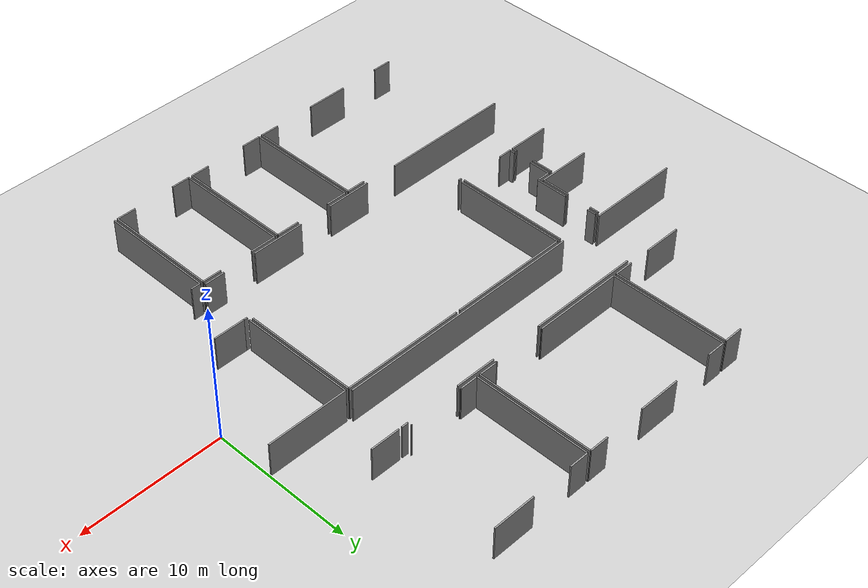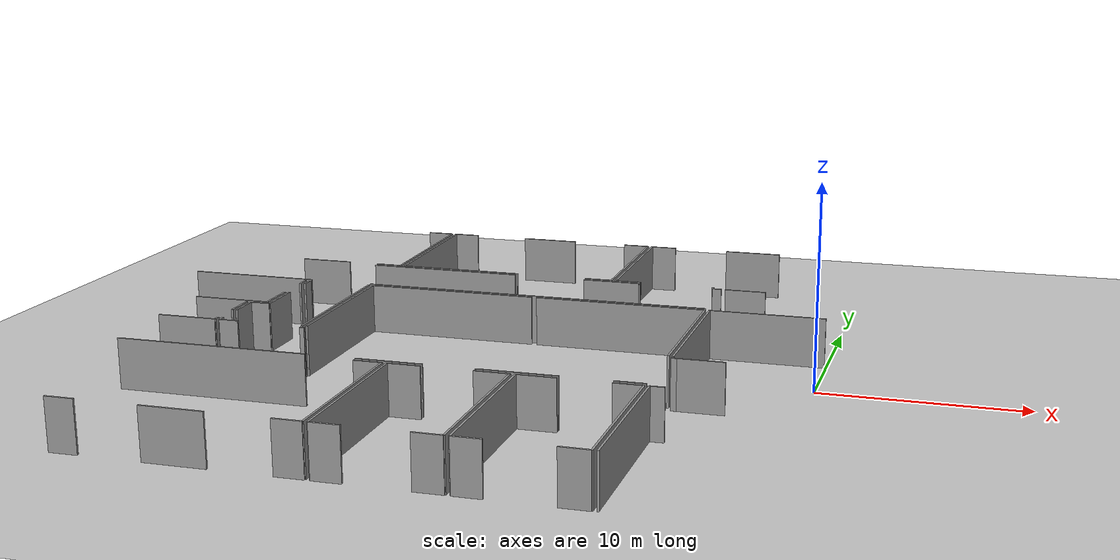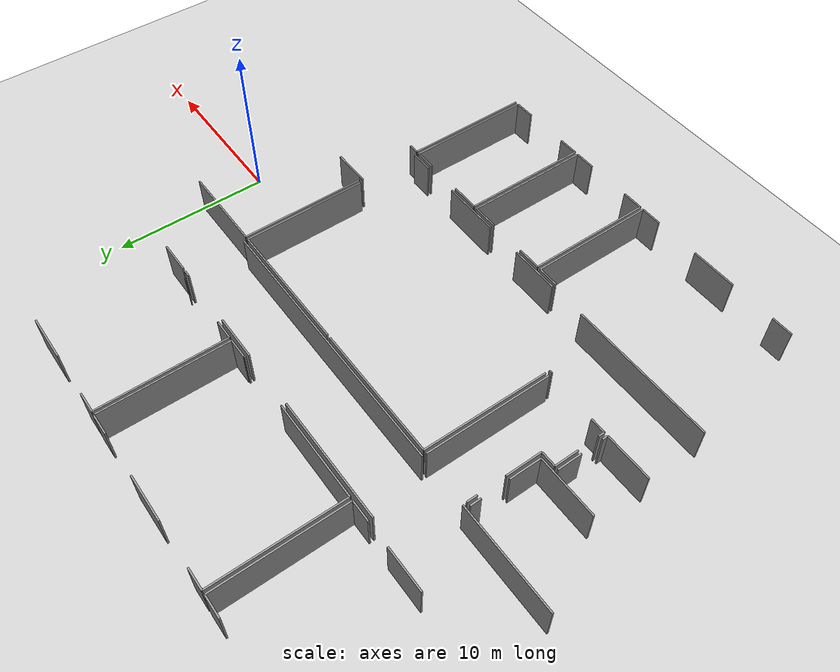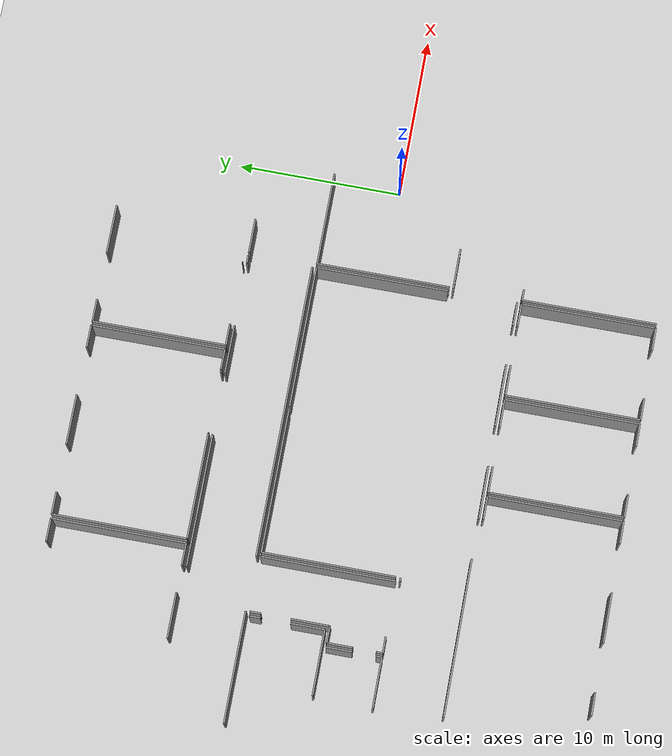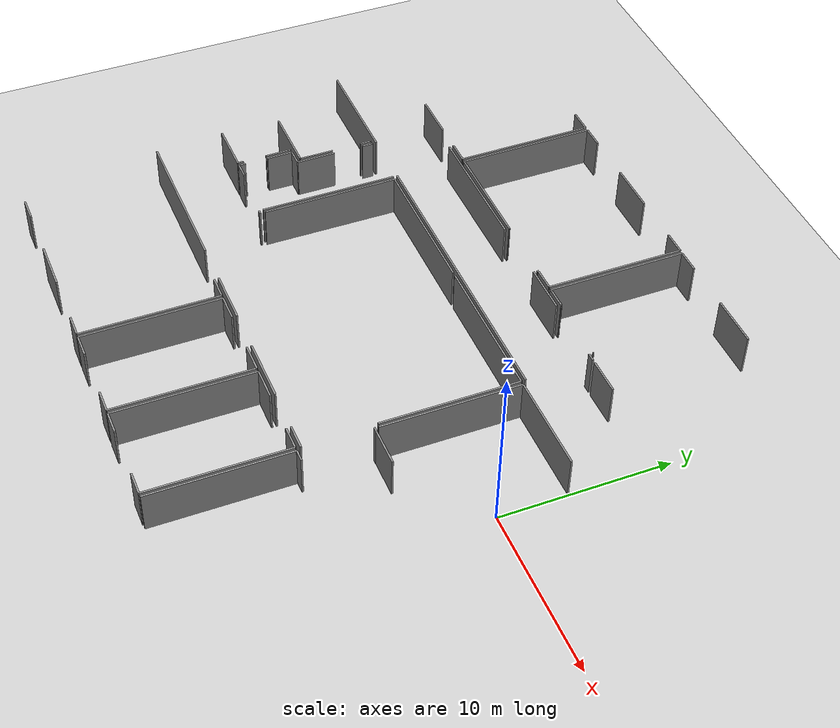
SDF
<sdf version="1.6">
 <world name="default">
  <model name="ground_plane">
   <static>1</static>
   <link name="link">
    <collision name="collision">
     <geometry><plane><normal>0 0 1</normal><size>100 100</size></plane></geometry>
     <surface><friction><ode><mu>100</mu><mu2>50</mu2></ode></friction></surface>
    </collision>
    <visual name="visual">
     <cast_shadows>0</cast_shadows>
     <geometry><plane><normal>0 0 1</normal><size>100 100</size></plane></geometry>
     <material>
      <script><uri>file://media/materials/scripts/gazebo.material</uri><name>Gazebo/Grey</name></script>
     </material>
    </visual>
   </link>
  </model>
  <model name="50041185">
   <static>1</static>
   <link name="Wall_40">
    <collision name="Wall_40_Collision">
     <geometry><box><size>1.39211225359 0.1 2.5</size></box></geometry>
     <pose>0.696056126794 0 1.25 0 0 0</pose>
    </collision>
    <visual name="Wall_40_Visual">
     <pose>0.696056126794 0 1.25 0 0 0</pose>
     <geometry><box><size>1.39211225359 0.1 2.5</size></box></geometry>
     <material>
      <script><uri>file://media/materials/scripts/gazebo.material</uri><name>Gazebo/Grey</name></script>
      <ambient>1 1 1 1</ambient>
     </material>
    </visual>
    <pose>52.1875341578 -25.3475514432 0 0 0 0.0</pose>
   </link>
   <link name="Wall_41">
    <collision name="Wall_41_Collision">
     <geometry><box><size>8.23053165394 0.1 2.5</size></box></geometry>
     <pose>4.11526582697 0 1.25 0 0 0</pose>
    </collision>
    <visual name="Wall_41_Visual">
     <pose>4.11526582697 0 1.25 0 0 0</pose>
     <geometry><box><size>8.23053165394 0.1 2.5</size></box></geometry>
     <material>
      <script><uri>file://media/materials/scripts/gazebo.material</uri><name>Gazebo/Grey</name></script>
      <ambient>1 1 1 1</ambient>
     </material>
    </visual>
    <pose>53.5796464114 -25.3475514432 0 0 0 -1.57079632679</pose>
   </link>
   <link name="Wall_42">
    <collision name="Wall_42_Collision">
     <geometry><box><size>1.38728250232 0.1 2.5</size></box></geometry>
     <pose>0.69364125116 0 1.25 0 0 0</pose>
    </collision>
    <visual name="Wall_42_Visual">
     <pose>0.69364125116 0 1.25 0 0 0</pose>
     <geometry><box><size>1.38728250232 0.1 2.5</size></box></geometry>
     <material>
      <script><uri>file://media/materials/scripts/gazebo.material</uri><name>Gazebo/Grey</name></script>
      <ambient>1 1 1 1</ambient>
     </material>
    </visual>
    <pose>53.5796464114 -33.5780830971 0 0 0 3.14159265359</pose>
   </link>
   <link name="Wall_43">
    <collision name="Wall_43_Collision">
     <geometry><box><size>3.01681516034 0.1 2.5</size></box></geometry>
     <pose>1.50840758017 0 1.25 0 0 0</pose>
    </collision>
    <visual name="Wall_43_Visual">
     <pose>1.50840758017 0 1.25 0 0 0</pose>
     <geometry><box><size>3.01681516034 0.1 2.5</size></box></geometry>
     <material>
      <script><uri>file://media/materials/scripts/gazebo.material</uri><name>Gazebo/Grey</name></script>
      <ambient>1 1 1 1</ambient>
     </material>
    </visual>
    <pose>49.2044001576 -33.5780830971 0 0 0 3.14159265359</pose>
   </link>
   <link name="Wall_44">
    <collision name="Wall_44_Collision">
     <geometry><box><size>1.3897049104 0.1 2.5</size></box></geometry>
     <pose>0.694852455199 0 1.25 0 0 0</pose>
    </collision>
    <visual name="Wall_44_Visual">
     <pose>0.694852455199 0 1.25 0 0 0</pose>
     <geometry><box><size>1.3897049104 0.1 2.5</size></box></geometry>
     <material>
      <script><uri>file://media/materials/scripts/gazebo.material</uri><name>Gazebo/Grey</name></script>
      <ambient>1 1 1 1</ambient>
     </material>
    </visual>
    <pose>43.1975876663 -33.5780830971 0 0 0 -3.13830018332</pose>
   </link>
   <link name="Wall_45">
    <collision name="Wall_45_Collision">
     <geometry><box><size>8.23015035778 0.1 2.5</size></box></geometry>
     <pose>4.11507517889 0 1.25 0 0 0</pose>
    </collision>
    <visual name="Wall_45_Visual">
     <pose>4.11507517889 0 1.25 0 0 0</pose>
     <geometry><box><size>8.23015035778 0.1 2.5</size></box></geometry>
     <material>
      <script><uri>file://media/materials/scripts/gazebo.material</uri><name>Gazebo/Grey</name></script>
      <ambient>1 1 1 1</ambient>
     </material>
    </visual>
    <pose>53.8140164466 -33.5804979728 0 0 0 1.57079632679</pose>
   </link>
   <link name="Wall_46">
    <collision name="Wall_46_Collision">
     <geometry><box><size>1.5882255748 0.1 2.5</size></box></geometry>
     <pose>0.794112787402 0 1.25 0 0 0</pose>
    </collision>
    <visual name="Wall_46_Visual">
     <pose>0.794112787402 0 1.25 0 0 0</pose>
     <geometry><box><size>1.5882255748 0.1 2.5</size></box></geometry>
     <material>
      <script><uri>file://media/materials/scripts/gazebo.material</uri><name>Gazebo/Grey</name></script>
      <ambient>1 1 1 1</ambient>
     </material>
    </visual>
    <pose>53.8140164466 -25.350347615 0 0 0 0.0</pose>
   </link>
   <link name="Wall_47">
    <collision name="Wall_47_Collision">
     <geometry><box><size>1.69816596551 0.1 2.5</size></box></geometry>
     <pose>0.849082982753 0 1.25 0 0 0</pose>
    </collision>
    <visual name="Wall_47_Visual">
     <pose>0.849082982753 0 1.25 0 0 0</pose>
     <geometry><box><size>1.69816596551 0.1 2.5</size></box></geometry>
     <material>
      <script><uri>file://media/materials/scripts/gazebo.material</uri><name>Gazebo/Grey</name></script>
      <ambient>1 1 1 1</ambient>
     </material>
    </visual>
    <pose>57.8825734948 -25.350347615 0 0 0 0.0</pose>
   </link>
   <link name="Wall_48">
    <collision name="Wall_48_Collision">
     <geometry><box><size>8.22976906163 0.1 2.5</size></box></geometry>
     <pose>4.11488453082 0 1.25 0 0 0</pose>
    </collision>
    <visual name="Wall_48_Visual">
     <pose>4.11488453082 0 1.25 0 0 0</pose>
     <geometry><box><size>8.22976906163 0.1 2.5</size></box></geometry>
     <material>
      <script><uri>file://media/materials/scripts/gazebo.material</uri><name>Gazebo/Grey</name></script>
      <ambient>1 1 1 1</ambient>
     </material>
    </visual>
    <pose>59.5807394603 -25.350347615 0 0 0 -1.57079632679</pose>
   </link>
   <link name="Wall_49">
    <collision name="Wall_49_Collision">
     <geometry><box><size>1.38067336901 0.1 2.5</size></box></geometry>
     <pose>0.690336684503 0 1.25 0 0 0</pose>
    </collision>
    <visual name="Wall_49_Visual">
     <pose>0.690336684503 0 1.25 0 0 0</pose>
     <geometry><box><size>1.38067336901 0.1 2.5</size></box></geometry>
     <material>
      <script><uri>file://media/materials/scripts/gazebo.material</uri><name>Gazebo/Grey</name></script>
      <ambient>1 1 1 1</ambient>
     </material>
    </visual>
    <pose>59.5807394603 -33.5801166766 0 0 0 3.14159265359</pose>
   </link>
   <link name="Wall_50">
    <collision name="Wall_50_Collision">
     <geometry><box><size>1.39757755046 0.1 2.5</size></box></geometry>
     <pose>0.698788775228 0 1.25 0 0 0</pose>
    </collision>
    <visual name="Wall_50_Visual">
     <pose>0.698788775228 0 1.25 0 0 0</pose>
     <geometry><box><size>1.39757755046 0.1 2.5</size></box></geometry>
     <material>
      <script><uri>file://media/materials/scripts/gazebo.material</uri><name>Gazebo/Grey</name></script>
      <ambient>1 1 1 1</ambient>
     </material>
    </visual>
    <pose>55.211593945 -33.5801166766 0 0 0 -3.14131982711</pose>
   </link>
   <link name="Wall_51">
    <collision name="Wall_51_Collision">
     <geometry><box><size>8.2353614052 0.1 2.5</size></box></geometry>
     <pose>4.1176807026 0 1.25 0 0 0</pose>
    </collision>
    <visual name="Wall_51_Visual">
     <pose>4.1176807026 0 1.25 0 0 0</pose>
     <geometry><box><size>8.2353614052 0.1 2.5</size></box></geometry>
     <material>
      <script><uri>file://media/materials/scripts/gazebo.material</uri><name>Gazebo/Grey</name></script>
      <ambient>1 1 1 1</ambient>
     </material>
    </visual>
    <pose>59.8299800455 -33.5846922305 0 0 0 1.57079632679</pose>
   </link>
   <link name="Wall_52">
    <collision name="Wall_52_Collision">
     <geometry><box><size>1.89110181878 0.1 2.5</size></box></geometry>
     <pose>0.945550909391 0 1.25 0 0 0</pose>
    </collision>
    <visual name="Wall_52_Visual">
     <pose>0.945550909391 0 1.25 0 0 0</pose>
     <geometry><box><size>1.89110181878 0.1 2.5</size></box></geometry>
     <material>
      <script><uri>file://media/materials/scripts/gazebo.material</uri><name>Gazebo/Grey</name></script>
      <ambient>1 1 1 1</ambient>
     </material>
    </visual>
    <pose>59.8299800455 -25.3493308253 0 0 0 0.0</pose>
   </link>
   <link name="Wall_53">
    <collision name="Wall_53_Collision">
     <geometry><box><size>1.39910268305 0.1 2.5</size></box></geometry>
     <pose>0.699551341527 0 1.25 0 0 0</pose>
    </collision>
    <visual name="Wall_53_Visual">
     <pose>0.699551341527 0 1.25 0 0 0</pose>
     <geometry><box><size>1.39910268305 0.1 2.5</size></box></geometry>
     <material>
      <script><uri>file://media/materials/scripts/gazebo.material</uri><name>Gazebo/Grey</name></script>
      <ambient>1 1 1 1</ambient>
     </material>
    </visual>
    <pose>64.1889576634 -25.3493308253 0 0 0 0.0</pose>
   </link>
   <link name="Wall_54">
    <collision name="Wall_54_Collision">
     <geometry><box><size>8.23332782572 0.1 2.5</size></box></geometry>
     <pose>4.11666391286 0 1.25 0 0 0</pose>
    </collision>
    <visual name="Wall_54_Visual">
     <pose>4.11666391286 0 1.25 0 0 0</pose>
     <geometry><box><size>8.23332782572 0.1 2.5</size></box></geometry>
     <material>
      <script><uri>file://media/materials/scripts/gazebo.material</uri><name>Gazebo/Grey</name></script>
      <ambient>1 1 1 1</ambient>
     </material>
    </visual>
    <pose>65.5880603465 -25.3493308253 0 0 0 -1.57079632679</pose>
   </link>
   <link name="Wall_55">
    <collision name="Wall_55_Collision">
     <geometry><box><size>1.38410503438 0.1 2.5</size></box></geometry>
     <pose>0.69205251719 0 1.25 0 0 0</pose>
    </collision>
    <visual name="Wall_55_Visual">
     <pose>0.69205251719 0 1.25 0 0 0</pose>
     <geometry><box><size>1.38410503438 0.1 2.5</size></box></geometry>
     <material>
      <script><uri>file://media/materials/scripts/gazebo.material</uri><name>Gazebo/Grey</name></script>
      <ambient>1 1 1 1</ambient>
     </material>
    </visual>
    <pose>65.5880603465 -33.582658651 0 0 0 3.14159265359</pose>
   </link>
   <link name="Wall_56">
    <collision name="Wall_56_Collision">
     <geometry><box><size>1.34445177247 0.1 2.5</size></box></geometry>
     <pose>0.672225886233 0 1.25 0 0 0</pose>
    </collision>
    <visual name="Wall_56_Visual">
     <pose>0.672225886233 0 1.25 0 0 0</pose>
     <geometry><box><size>1.34445177247 0.1 2.5</size></box></geometry>
     <material>
      <script><uri>file://media/materials/scripts/gazebo.material</uri><name>Gazebo/Grey</name></script>
      <ambient>1 1 1 1</ambient>
     </material>
    </visual>
    <pose>61.17443028 -33.582658651 0 0 0 -3.14008008148</pose>
   </link>
   <link name="Wall_57">
    <collision name="Wall_57_Collision">
     <geometry><box><size>8.24222473595 0.1 2.5</size></box></geometry>
     <pose>4.12111236798 0 1.25 0 0 0</pose>
    </collision>
    <visual name="Wall_57_Visual">
     <pose>4.12111236798 0 1.25 0 0 0</pose>
     <geometry><box><size>8.24222473595 0.1 2.5</size></box></geometry>
     <material>
      <script><uri>file://media/materials/scripts/gazebo.material</uri><name>Gazebo/Grey</name></script>
      <ambient>1 1 1 1</ambient>
     </material>
    </visual>
    <pose>65.8242097637 -33.5905387715 0 0 0 1.57079632679</pose>
   </link>
   <link name="Wall_58">
    <collision name="Wall_58_Collision">
     <geometry><box><size>0.687985358228 0.1 2.5</size></box></geometry>
     <pose>0.343992679114 0 1.25 0 0 0</pose>
    </collision>
    <visual name="Wall_58_Visual">
     <pose>0.343992679114 0 1.25 0 0 0</pose>
     <geometry><box><size>0.687985358228 0.1 2.5</size></box></geometry>
     <material>
      <script><uri>file://media/materials/scripts/gazebo.material</uri><name>Gazebo/Grey</name></script>
      <ambient>1 1 1 1</ambient>
     </material>
    </visual>
    <pose>65.8242097637 -25.3483140355 0 0 0 0.0</pose>
   </link>
   <link name="Wall_156">
    <collision name="Wall_156_Collision">
     <geometry><box><size>1.58631909404 0.1 2.5</size></box></geometry>
     <pose>0.79315954702 0 1.25 0 0 0</pose>
    </collision>
    <visual name="Wall_156_Visual">
     <pose>0.79315954702 0 1.25 0 0 0</pose>
     <geometry><box><size>1.58631909404 0.1 2.5</size></box></geometry>
     <material>
      <script><uri>file://media/materials/scripts/gazebo.material</uri><name>Gazebo/Grey</name></script>
      <ambient>1 1 1 1</ambient>
     </material>
    </visual>
    <pose>42.9683015798 -17.5180162432 0 0 0 -1.57079632679</pose>
   </link>
   <link name="Wall_157">
    <collision name="Wall_157_Collision">
     <geometry><box><size>0.358418383559 0.1 2.5</size></box></geometry>
     <pose>0.179209191779 0 1.25 0 0 0</pose>
    </collision>
    <visual name="Wall_157_Visual">
     <pose>0.179209191779 0 1.25 0 0 0</pose>
     <geometry><box><size>0.358418383559 0.1 2.5</size></box></geometry>
     <material>
      <script><uri>file://media/materials/scripts/gazebo.material</uri><name>Gazebo/Grey</name></script>
      <ambient>1 1 1 1</ambient>
     </material>
    </visual>
    <pose>42.9683015798 -20.5219944331 0 0 0 -1.57079632679</pose>
   </link>
   <link name="Wall_158">
    <collision name="Wall_158_Collision">
     <geometry><box><size>3.04389304882 0.1 2.5</size></box></geometry>
     <pose>1.52194652441 0 1.25 0 0 0</pose>
    </collision>
    <visual name="Wall_158_Visual">
     <pose>1.52194652441 0 1.25 0 0 0</pose>
     <geometry><box><size>3.04389304882 0.1 2.5</size></box></geometry>
     <material>
      <script><uri>file://media/materials/scripts/gazebo.material</uri><name>Gazebo/Grey</name></script>
      <ambient>1 1 1 1</ambient>
     </material>
    </visual>
    <pose>42.9683015798 -20.8804128166 0 0 0 -3.13963015246</pose>
   </link>
   <link name="Wall_159">
    <collision name="Wall_159_Collision">
     <geometry><box><size>0.402775835992 0.1 2.5</size></box></geometry>
     <pose>0.201387917996 0 1.25 0 0 0</pose>
    </collision>
    <visual name="Wall_159_Visual">
     <pose>0.201387917996 0 1.25 0 0 0</pose>
     <geometry><box><size>0.402775835992 0.1 2.5</size></box></geometry>
     <material>
      <script><uri>file://media/materials/scripts/gazebo.material</uri><name>Gazebo/Grey</name></script>
      <ambient>1 1 1 1</ambient>
     </material>
    </visual>
    <pose>43.2130937099 -20.8884200358 0 0 0 1.57079632679</pose>
   </link>
   <link name="Wall_160">
    <collision name="Wall_160_Collision">
     <geometry><box><size>1.56306002872 0.1 2.5</size></box></geometry>
     <pose>0.781530014362 0 1.25 0 0 0</pose>
    </collision>
    <visual name="Wall_160_Visual">
     <pose>0.781530014362 0 1.25 0 0 0</pose>
     <geometry><box><size>1.56306002872 0.1 2.5</size></box></geometry>
     <material>
      <script><uri>file://media/materials/scripts/gazebo.material</uri><name>Gazebo/Grey</name></script>
      <ambient>1 1 1 1</ambient>
     </material>
    </visual>
    <pose>43.2130937099 -19.0884479976 0 0 0 1.57079632679</pose>
   </link>
   <link name="Wall_161">
    <collision name="Wall_161_Collision">
     <geometry><box><size>1.01018060728 0.1 2.5</size></box></geometry>
     <pose>0.505090303639 0 1.25 0 0 0</pose>
    </collision>
    <visual name="Wall_161_Visual">
     <pose>0.505090303639 0 1.25 0 0 0</pose>
     <geometry><box><size>1.01018060728 0.1 2.5</size></box></geometry>
     <material>
      <script><uri>file://media/materials/scripts/gazebo.material</uri><name>Gazebo/Grey</name></script>
      <ambient>1 1 1 1</ambient>
     </material>
    </visual>
    <pose>43.2130937099 -17.5253879688 0 0 0 0.0</pose>
   </link>
   <link name="Wall_162">
    <collision name="Wall_162_Collision">
     <geometry><box><size>2.34242936489 0.1 2.5</size></box></geometry>
     <pose>1.17121468244 0 1.25 0 0 0</pose>
    </collision>
    <visual name="Wall_162_Visual">
     <pose>1.17121468244 0 1.25 0 0 0</pose>
     <geometry><box><size>2.34242936489 0.1 2.5</size></box></geometry>
     <material>
      <script><uri>file://media/materials/scripts/gazebo.material</uri><name>Gazebo/Grey</name></script>
      <ambient>1 1 1 1</ambient>
     </material>
    </visual>
    <pose>44.2232743172 -17.5253879688 0 0 0 1.57079632679</pose>
   </link>
   <link name="Wall_163">
    <collision name="Wall_163_Collision">
     <geometry><box><size>0.663709503171 0.1 2.5</size></box></geometry>
     <pose>0.331854751586 0 1.25 0 0 0</pose>
    </collision>
    <visual name="Wall_163_Visual">
     <pose>0.331854751586 0 1.25 0 0 0</pose>
     <geometry><box><size>0.663709503171 0.1 2.5</size></box></geometry>
     <material>
      <script><uri>file://media/materials/scripts/gazebo.material</uri><name>Gazebo/Grey</name></script>
      <ambient>1 1 1 1</ambient>
     </material>
    </visual>
    <pose>44.2232743172 -13.3673534234 0 0 0 1.57079632679</pose>
   </link>
   <link name="Wall_164">
    <collision name="Wall_164_Collision">
     <geometry><box><size>8.18020056178 0.1 2.5</size></box></geometry>
     <pose>4.09010028089 0 1.25 0 0 0</pose>
    </collision>
    <visual name="Wall_164_Visual">
     <pose>4.09010028089 0 1.25 0 0 0</pose>
     <geometry><box><size>8.18020056178 0.1 2.5</size></box></geometry>
     <material>
      <script><uri>file://media/materials/scripts/gazebo.material</uri><name>Gazebo/Grey</name></script>
      <ambient>1 1 1 1</ambient>
     </material>
    </visual>
    <pose>47.5748674996 -12.7036439202 0 0 0 -1.57079632679</pose>
   </link>
   <link name="Wall_165">
    <collision name="Wall_165_Collision">
     <geometry><box><size>0.992397334913 0.1 2.5</size></box></geometry>
     <pose>0.496198667457 0 1.25 0 0 0</pose>
    </collision>
    <visual name="Wall_165_Visual">
     <pose>0.496198667457 0 1.25 0 0 0</pose>
     <geometry><box><size>0.992397334913 0.1 2.5</size></box></geometry>
     <material>
      <script><uri>file://media/materials/scripts/gazebo.material</uri><name>Gazebo/Grey</name></script>
      <ambient>1 1 1 1</ambient>
     </material>
    </visual>
    <pose>44.2054804967 -20.883844482 0 0 0 -3.13698203052</pose>
   </link>
   <link name="Wall_166">
    <collision name="Wall_166_Collision">
     <geometry><box><size>8.74909442164 0.1 2.5</size></box></geometry>
     <pose>4.37454721082 0 1.25 0 0 0</pose>
    </collision>
    <visual name="Wall_166_Visual">
     <pose>4.37454721082 0 1.25 0 0 0</pose>
     <geometry><box><size>8.74909442164 0.1 2.5</size></box></geometry>
     <material>
      <script><uri>file://media/materials/scripts/gazebo.material</uri><name>Gazebo/Grey</name></script>
      <ambient>1 1 1 1</ambient>
     </material>
    </visual>
    <pose>56.5711689269 -12.7206751484 0 0 0 3.14159265359</pose>
   </link>
   <link name="Wall_167">
    <collision name="Wall_167_Collision">
     <geometry><box><size>8.11487741972 0.1 2.5</size></box></geometry>
     <pose>4.05743870986 0 1.25 0 0 0</pose>
    </collision>
    <visual name="Wall_167_Visual">
     <pose>4.05743870986 0 1.25 0 0 0</pose>
     <geometry><box><size>8.11487741972 0.1 2.5</size></box></geometry>
     <material>
      <script><uri>file://media/materials/scripts/gazebo.material</uri><name>Gazebo/Grey</name></script>
      <ambient>1 1 1 1</ambient>
     </material>
    </visual>
    <pose>47.8220745053 -12.7206751484 0 0 0 -1.57197100948</pose>
   </link>
   <link name="Wall_168">
    <collision name="Wall_168_Collision">
     <geometry><box><size>8.75913522033 0.1 2.5</size></box></geometry>
     <pose>4.37956761016 0 1.25 0 0 0</pose>
    </collision>
    <visual name="Wall_168_Visual">
     <pose>4.37956761016 0 1.25 0 0 0</pose>
     <geometry><box><size>8.75913522033 0.1 2.5</size></box></geometry>
     <material>
      <script><uri>file://media/materials/scripts/gazebo.material</uri><name>Gazebo/Grey</name></script>
      <ambient>1 1 1 1</ambient>
     </material>
    </visual>
    <pose>56.8293064223 -12.7196583586 0 0 0 0.0</pose>
   </link>
   <link name="Wall_169">
    <collision name="Wall_169_Collision">
     <geometry><box><size>8.10724972757 0.1 2.5</size></box></geometry>
     <pose>4.05362486378 0 1.25 0 0 0</pose>
    </collision>
    <visual name="Wall_169_Visual">
     <pose>4.05362486378 0 1.25 0 0 0</pose>
     <geometry><box><size>8.10724972757 0.1 2.5</size></box></geometry>
     <material>
      <script><uri>file://media/materials/scripts/gazebo.material</uri><name>Gazebo/Grey</name></script>
      <ambient>1 1 1 1</ambient>
     </material>
    </visual>
    <pose>65.5884416426 -12.7196583586 0 0 0 -1.56982434221</pose>
   </link>
   <link name="Wall_170">
    <collision name="Wall_170_Collision">
     <geometry><box><size>8.16482161695 0.1 2.5</size></box></geometry>
     <pose>4.08241080847 0 1.25 0 0 0</pose>
    </collision>
    <visual name="Wall_170_Visual">
     <pose>4.08241080847 0 1.25 0 0 0</pose>
     <geometry><box><size>8.16482161695 0.1 2.5</size></box></geometry>
     <material>
      <script><uri>file://media/materials/scripts/gazebo.material</uri><name>Gazebo/Grey</name></script>
      <ambient>1 1 1 1</ambient>
     </material>
    </visual>
    <pose>65.8278956265 -20.8851154692 0 0 0 1.57079632679</pose>
   </link>
   <link name="Wall_171">
    <collision name="Wall_171_Collision">
     <geometry><box><size>5.77752640476 0.1 2.5</size></box></geometry>
     <pose>2.88876320238 0 1.25 0 0 0</pose>
    </collision>
    <visual name="Wall_171_Visual">
     <pose>2.88876320238 0 1.25 0 0 0</pose>
     <geometry><box><size>5.77752640476 0.1 2.5</size></box></geometry>
     <material>
      <script><uri>file://media/materials/scripts/gazebo.material</uri><name>Gazebo/Grey</name></script>
      <ambient>1 1 1 1</ambient>
     </material>
    </visual>
    <pose>65.8278956265 -12.7202938522 0 0 0 0.0</pose>
   </link>
   <link name="Wall_243">
    <collision name="Wall_243_Collision">
     <geometry><box><size>0.233734541618 0.1 2.5</size></box></geometry>
     <pose>0.116867270809 0 1.25 0 0 0</pose>
    </collision>
    <visual name="Wall_243_Visual">
     <pose>0.116867270809 0 1.25 0 0 0</pose>
     <geometry><box><size>0.233734541618 0.1 2.5</size></box></geometry>
     <material>
      <script><uri>file://media/materials/scripts/gazebo.material</uri><name>Gazebo/Grey</name></script>
      <ambient>1 1 1 1</ambient>
     </material>
    </visual>
    <pose>47.5907548393 -21.1224087749 0 0 0 0.0</pose>
   </link>
   <link name="Wall_244">
    <collision name="Wall_244_Collision">
     <geometry><box><size>1.47065926105 0.1 2.5</size></box></geometry>
     <pose>0.735329630524 0 1.25 0 0 0</pose>
    </collision>
    <visual name="Wall_244_Visual">
     <pose>0.735329630524 0 1.25 0 0 0</pose>
     <geometry><box><size>1.47065926105 0.1 2.5</size></box></geometry>
     <material>
      <script><uri>file://media/materials/scripts/gazebo.material</uri><name>Gazebo/Grey</name></script>
      <ambient>1 1 1 1</ambient>
     </material>
    </visual>
    <pose>65.6405521168 -25.0772124709 0 0 0 3.14159265359</pose>
   </link>
   <link name="Wall_245">
    <collision name="Wall_245_Collision">
     <geometry><box><size>3.84270262713 0.1 2.5</size></box></geometry>
     <pose>1.92135131357 0 1.25 0 0 0</pose>
    </collision>
    <visual name="Wall_245_Visual">
     <pose>1.92135131357 0 1.25 0 0 0</pose>
     <geometry><box><size>3.84270262713 0.1 2.5</size></box></geometry>
     <material>
      <script><uri>file://media/materials/scripts/gazebo.material</uri><name>Gazebo/Grey</name></script>
      <ambient>1 1 1 1</ambient>
     </material>
    </visual>
    <pose>61.7182856925 -25.0772124709 0 0 0 3.14159265359</pose>
   </link>
   <link name="Wall_246">
    <collision name="Wall_246_Collision">
     <geometry><box><size>3.24444896351 0.1 2.5</size></box></geometry>
     <pose>1.62222448175 0 1.25 0 0 0</pose>
    </collision>
    <visual name="Wall_246_Visual">
     <pose>1.62222448175 0 1.25 0 0 0</pose>
     <geometry><box><size>3.24444896351 0.1 2.5</size></box></geometry>
     <material>
      <script><uri>file://media/materials/scripts/gazebo.material</uri><name>Gazebo/Grey</name></script>
      <ambient>1 1 1 1</ambient>
     </material>
    </visual>
    <pose>55.4007168368 -25.0772124709 0 0 0 3.14159265359</pose>
   </link>
   <link name="Wall_247">
    <collision name="Wall_247_Collision">
     <geometry><box><size>9.53303931163 0.1 2.5</size></box></geometry>
     <pose>4.76651965582 0 1.25 0 0 0</pose>
    </collision>
    <visual name="Wall_247_Visual">
     <pose>4.76651965582 0 1.25 0 0 0</pose>
     <geometry><box><size>9.53303931163 0.1 2.5</size></box></geometry>
     <material>
      <script><uri>file://media/materials/scripts/gazebo.material</uri><name>Gazebo/Grey</name></script>
      <ambient>1 1 1 1</ambient>
     </material>
    </visual>
    <pose>49.7017374395 -25.0772124709 0 0 0 3.14159265359</pose>
   </link>
   <link name="Wall_253">
    <collision name="Wall_253_Collision">
     <geometry><box><size>2.23642903443 0.1 2.5</size></box></geometry>
     <pose>1.11821451722 0 1.25 0 0 0</pose>
    </collision>
    <visual name="Wall_253_Visual">
     <pose>1.11821451722 0 1.25 0 0 0</pose>
     <geometry><box><size>2.23642903443 0.1 2.5</size></box></geometry>
     <material>
      <script><uri>file://media/materials/scripts/gazebo.material</uri><name>Gazebo/Grey</name></script>
      <ambient>1 1 1 1</ambient>
     </material>
    </visual>
    <pose>66.0659515245 -21.1166893326 0 0 0 0.0</pose>
   </link>
   <link name="Wall_272">
    <collision name="Wall_272_Collision">
     <geometry><box><size>0.275937053092 0.1 2.5</size></box></geometry>
     <pose>0.137968526546 0 1.25 0 0 0</pose>
    </collision>
    <visual name="Wall_272_Visual">
     <pose>0.137968526546 0 1.25 0 0 0</pose>
     <geometry><box><size>0.275937053092 0.1 2.5</size></box></geometry>
     <material>
      <script><uri>file://media/materials/scripts/gazebo.material</uri><name>Gazebo/Grey</name></script>
      <ambient>1 1 1 1</ambient>
     </material>
    </visual>
    <pose>65.7900202087 -21.1184687147 0 0 0 0.00644855179257</pose>
   </link>
   <link name="Wall_294">
    <collision name="Wall_294_Collision">
     <geometry><box><size>1.40622021124 0.1 2.5</size></box></geometry>
     <pose>0.703110105619 0 1.25 0 0 0</pose>
    </collision>
    <visual name="Wall_294_Visual">
     <pose>0.703110105619 0 1.25 0 0 0</pose>
     <geometry><box><size>1.40622021124 0.1 2.5</size></box></geometry>
     <material>
      <script><uri>file://media/materials/scripts/gazebo.material</uri><name>Gazebo/Grey</name></script>
      <ambient>1 1 1 1</ambient>
     </material>
    </visual>
    <pose>46.1631820435 -0.0102949961235 0 0 0 0.0</pose>
   </link>
   <link name="Wall_295">
    <collision name="Wall_295_Collision">
     <geometry><box><size>8.20752678605 0.1 2.5</size></box></geometry>
     <pose>4.10376339303 0 1.25 0 0 0</pose>
    </collision>
    <visual name="Wall_295_Visual">
     <pose>4.10376339303 0 1.25 0 0 0</pose>
     <geometry><box><size>8.20752678605 0.1 2.5</size></box></geometry>
     <material>
      <script><uri>file://media/materials/scripts/gazebo.material</uri><name>Gazebo/Grey</name></script>
      <ambient>1 1 1 1</ambient>
     </material>
    </visual>
    <pose>47.5694022547 -0.0102949961235 0 0 0 -1.57079632679</pose>
   </link>
   <link name="Wall_296">
    <collision name="Wall_296_Collision">
     <geometry><box><size>1.36936158314 0.1 2.5</size></box></geometry>
     <pose>0.684680791571 0 1.25 0 0 0</pose>
    </collision>
    <visual name="Wall_296_Visual">
     <pose>0.684680791571 0 1.25 0 0 0</pose>
     <geometry><box><size>1.36936158314 0.1 2.5</size></box></geometry>
     <material>
      <script><uri>file://media/materials/scripts/gazebo.material</uri><name>Gazebo/Grey</name></script>
      <ambient>1 1 1 1</ambient>
     </material>
    </visual>
    <pose>47.5694022547 -8.21782178218 0 0 0 3.14159265359</pose>
   </link>
   <link name="Wall_297">
    <collision name="Wall_297_Collision">
     <geometry><box><size>2.76300007665 0.1 2.5</size></box></geometry>
     <pose>1.38150003832 0 1.25 0 0 0</pose>
    </collision>
    <visual name="Wall_297_Visual">
     <pose>1.38150003832 0 1.25 0 0 0</pose>
     <geometry><box><size>2.76300007665 0.1 2.5</size></box></geometry>
     <material>
      <script><uri>file://media/materials/scripts/gazebo.material</uri><name>Gazebo/Grey</name></script>
      <ambient>1 1 1 1</ambient>
     </material>
    </visual>
    <pose>44.5673305456 -8.21782178218 0 0 0 -3.14071864857</pose>
   </link>
   <link name="Wall_298">
    <collision name="Wall_298_Collision">
     <geometry><box><size>8.22239733601 0.1 2.5</size></box></geometry>
     <pose>4.11119866801 0 1.25 0 0 0</pose>
    </collision>
    <visual name="Wall_298_Visual">
     <pose>4.11119866801 0 1.25 0 0 0</pose>
     <geometry><box><size>8.22239733601 0.1 2.5</size></box></geometry>
     <material>
      <script><uri>file://media/materials/scripts/gazebo.material</uri><name>Gazebo/Grey</name></script>
      <ambient>1 1 1 1</ambient>
     </material>
    </visual>
    <pose>47.8180073463 -8.22239733601 0 0 0 1.57079632679</pose>
   </link>
   <link name="Wall_299">
    <collision name="Wall_299_Collision">
     <geometry><box><size>1.38016497414 0.1 2.5</size></box></geometry>
     <pose>0.690082487068 0 1.25 0 0 0</pose>
    </collision>
    <visual name="Wall_299_Visual">
     <pose>0.690082487068 0 1.25 0 0 0</pose>
     <geometry><box><size>1.38016497414 0.1 2.5</size></box></geometry>
     <material>
      <script><uri>file://media/materials/scripts/gazebo.material</uri><name>Gazebo/Grey</name></script>
      <ambient>1 1 1 1</ambient>
     </material>
    </visual>
    <pose>47.8180073463 -0.0 0 0 0 0.0</pose>
   </link>
   <link name="Wall_300">
    <collision name="Wall_300_Collision">
     <geometry><box><size>3.07286569479 0.1 2.5</size></box></geometry>
     <pose>1.53643284739 0 1.25 0 0 0</pose>
    </collision>
    <visual name="Wall_300_Visual">
     <pose>1.53643284739 0 1.25 0 0 0</pose>
     <geometry><box><size>3.07286569479 0.1 2.5</size></box></geometry>
     <material>
      <script><uri>file://media/materials/scripts/gazebo.material</uri><name>Gazebo/Grey</name></script>
      <ambient>1 1 1 1</ambient>
     </material>
    </visual>
    <pose>52.1420328169 -0.0 0 0 0 0.0</pose>
   </link>
   <link name="Wall_301">
    <collision name="Wall_301_Collision">
     <geometry><box><size>1.41104996251 0.1 2.5</size></box></geometry>
     <pose>0.705524981253 0 1.25 0 0 0</pose>
    </collision>
    <visual name="Wall_301_Visual">
     <pose>0.705524981253 0 1.25 0 0 0</pose>
     <geometry><box><size>1.41104996251 0.1 2.5</size></box></geometry>
     <material>
      <script><uri>file://media/materials/scripts/gazebo.material</uri><name>Gazebo/Grey</name></script>
      <ambient>1 1 1 1</ambient>
     </material>
    </visual>
    <pose>58.1740108542 -0.0 0 0 0 0.0</pose>
   </link>
   <link name="Wall_302">
    <collision name="Wall_302_Collision">
     <geometry><box><size>8.227354186 0.1 2.5</size></box></geometry>
     <pose>4.113677093 0 1.25 0 0 0</pose>
    </collision>
    <visual name="Wall_302_Visual">
     <pose>4.113677093 0 1.25 0 0 0</pose>
     <geometry><box><size>8.227354186 0.1 2.5</size></box></geometry>
     <material>
      <script><uri>file://media/materials/scripts/gazebo.material</uri><name>Gazebo/Grey</name></script>
      <ambient>1 1 1 1</ambient>
     </material>
    </visual>
    <pose>59.5850608167 -0.0 0 0 0 -1.57079632679</pose>
   </link>
   <link name="Wall_303">
    <collision name="Wall_303_Collision">
     <geometry><box><size>1.33326554735 0.1 2.5</size></box></geometry>
     <pose>0.666632773675 0 1.25 0 0 0</pose>
    </collision>
    <visual name="Wall_303_Visual">
     <pose>0.666632773675 0 1.25 0 0 0</pose>
     <geometry><box><size>1.33326554735 0.1 2.5</size></box></geometry>
     <material>
      <script><uri>file://media/materials/scripts/gazebo.material</uri><name>Gazebo/Grey</name></script>
      <ambient>1 1 1 1</ambient>
     </material>
    </visual>
    <pose>59.5850608167 -8.227354186 0 0 0 3.14159265359</pose>
   </link>
   <link name="Wall_304">
    <collision name="Wall_304_Collision">
     <geometry><box><size>0.0322830742638 0.1 2.5</size></box></geometry>
     <pose>0.0161415371319 0 1.25 0 0 0</pose>
    </collision>
    <visual name="Wall_304_Visual">
     <pose>0.0161415371319 0 1.25 0 0 0</pose>
     <geometry><box><size>0.0322830742638 0.1 2.5</size></box></geometry>
     <material>
      <script><uri>file://media/materials/scripts/gazebo.material</uri><name>Gazebo/Grey</name></script>
      <ambient>1 1 1 1</ambient>
     </material>
    </visual>
    <pose>58.2517952694 -8.227354186 0 0 0 -1.57079632679</pose>
   </link>
   <link name="Wall_305">
    <collision name="Wall_305_Collision">
     <geometry><box><size>0.11578693171 0.1 2.5</size></box></geometry>
     <pose>0.0578934658549 0 1.25 0 0 0</pose>
    </collision>
    <visual name="Wall_305_Visual">
     <pose>0.0578934658549 0 1.25 0 0 0</pose>
     <geometry><box><size>0.11578693171 0.1 2.5</size></box></geometry>
     <material>
      <script><uri>file://media/materials/scripts/gazebo.material</uri><name>Gazebo/Grey</name></script>
      <ambient>1 1 1 1</ambient>
     </material>
    </visual>
    <pose>58.2517952694 -8.25963726026 0 0 0 3.14159265359</pose>
   </link>
   <link name="Wall_306">
    <collision name="Wall_306_Collision">
     <geometry><box><size>0.0284701127366 0.1 2.5</size></box></geometry>
     <pose>0.0142350563683 0 1.25 0 0 0</pose>
    </collision>
    <visual name="Wall_306_Visual">
     <pose>0.0142350563683 0 1.25 0 0 0</pose>
     <geometry><box><size>0.0284701127366 0.1 2.5</size></box></geometry>
     <material>
      <script><uri>file://media/materials/scripts/gazebo.material</uri><name>Gazebo/Grey</name></script>
      <ambient>1 1 1 1</ambient>
     </material>
    </visual>
    <pose>54.3302914374 -8.25963726026 0 0 0 1.57079632679</pose>
   </link>
   <link name="Wall_307">
    <collision name="Wall_307_Collision">
     <geometry><box><size>6.51228999601 0.1 2.5</size></box></geometry>
     <pose>3.25614499801 0 1.25 0 0 0</pose>
    </collision>
    <visual name="Wall_307_Visual">
     <pose>3.25614499801 0 1.25 0 0 0</pose>
     <geometry><box><size>6.51228999601 0.1 2.5</size></box></geometry>
     <material>
      <script><uri>file://media/materials/scripts/gazebo.material</uri><name>Gazebo/Grey</name></script>
      <ambient>1 1 1 1</ambient>
     </material>
    </visual>
    <pose>54.3302914374 -8.23116714752 0 0 0 3.14024599763</pose>
   </link>
   <link name="Wall_308">
    <collision name="Wall_308_Collision">
     <geometry><box><size>8.21680499244 0.1 2.5</size></box></geometry>
     <pose>4.10840249622 0 1.25 0 0 0</pose>
    </collision>
    <visual name="Wall_308_Visual">
     <pose>4.10840249622 0 1.25 0 0 0</pose>
     <geometry><box><size>8.21680499244 0.1 2.5</size></box></geometry>
     <material>
      <script><uri>file://media/materials/scripts/gazebo.material</uri><name>Gazebo/Grey</name></script>
      <ambient>1 1 1 1</ambient>
     </material>
    </visual>
    <pose>59.8297258481 -8.23447171418 0 0 0 1.57079632679</pose>
   </link>
   <link name="Wall_309">
    <collision name="Wall_309_Collision">
     <geometry><box><size>1.38588441643 0.1 2.5</size></box></geometry>
     <pose>0.692942208213 0 1.25 0 0 0</pose>
    </collision>
    <visual name="Wall_309_Visual">
     <pose>0.692942208213 0 1.25 0 0 0</pose>
     <geometry><box><size>1.38588441643 0.1 2.5</size></box></geometry>
     <material>
      <script><uri>file://media/materials/scripts/gazebo.material</uri><name>Gazebo/Grey</name></script>
      <ambient>1 1 1 1</ambient>
     </material>
    </visual>
    <pose>59.8297258481 -0.0176667217428 0 0 0 0.0</pose>
   </link>
   <link name="Wall_310">
    <collision name="Wall_310_Collision">
     <geometry><box><size>3.03638836284 0.1 2.5</size></box></geometry>
     <pose>1.51819418142 0 1.25 0 0 0</pose>
    </collision>
    <visual name="Wall_310_Visual">
     <pose>1.51819418142 0 1.25 0 0 0</pose>
     <geometry><box><size>3.03638836284 0.1 2.5</size></box></geometry>
     <material>
      <script><uri>file://media/materials/scripts/gazebo.material</uri><name>Gazebo/Grey</name></script>
      <ambient>1 1 1 1</ambient>
     </material>
    </visual>
    <pose>64.1871782814 -0.0176667217428 0 0 0 0.0</pose>
   </link>
   <link name="Wall_314">
    <collision name="Wall_314_Collision">
     <geometry><box><size>0.0460097357618 0.1 2.5</size></box></geometry>
     <pose>0.0230048678809 0 1.25 0 0 0</pose>
    </collision>
    <visual name="Wall_314_Visual">
     <pose>0.0230048678809 0 1.25 0 0 0</pose>
     <geometry><box><size>0.0460097357618 0.1 2.5</size></box></geometry>
     <material>
      <script><uri>file://media/materials/scripts/gazebo.material</uri><name>Gazebo/Grey</name></script>
      <ambient>1 1 1 1</ambient>
     </material>
    </visual>
    <pose>65.0827158454 -8.22506640908 0 0 0 -1.57079632679</pose>
   </link>
   <link name="Wall_315">
    <collision name="Wall_315_Collision">
     <geometry><box><size>0.04295936654 0.1 2.5</size></box></geometry>
     <pose>0.02147968327 0 1.25 0 0 0</pose>
    </collision>
    <visual name="Wall_315_Visual">
     <pose>0.02147968327 0 1.25 0 0 0</pose>
     <geometry><box><size>0.04295936654 0.1 2.5</size></box></geometry>
     <material>
      <script><uri>file://media/materials/scripts/gazebo.material</uri><name>Gazebo/Grey</name></script>
      <ambient>1 1 1 1</ambient>
     </material>
    </visual>
    <pose>61.146087266 -8.27107614484 0 0 0 1.57079632679</pose>
   </link>
   <link name="Wall_316">
    <collision name="Wall_316_Collision">
     <geometry><box><size>1.31637675754 0.1 2.5</size></box></geometry>
     <pose>0.658188378768 0 1.25 0 0 0</pose>
    </collision>
    <visual name="Wall_316_Visual">
     <pose>0.658188378768 0 1.25 0 0 0</pose>
     <geometry><box><size>1.31637675754 0.1 2.5</size></box></geometry>
     <material>
      <script><uri>file://media/materials/scripts/gazebo.material</uri><name>Gazebo/Grey</name></script>
      <ambient>1 1 1 1</ambient>
     </material>
    </visual>
    <pose>61.146087266 -8.2281167783 0 0 0 -3.1367650383</pose>
   </link>
   <link name="Wall_379">
    <collision name="Wall_379_Collision">
     <geometry><box><size>0.690781530014 0.1 2.5</size></box></geometry>
     <pose>0.345390765007 0 1.25 0 0 0</pose>
    </collision>
    <visual name="Wall_379_Visual">
     <pose>0.345390765007 0 1.25 0 0 0</pose>
     <geometry><box><size>0.690781530014 0.1 2.5</size></box></geometry>
     <material>
      <script><uri>file://media/materials/scripts/gazebo.material</uri><name>Gazebo/Grey</name></script>
      <ambient>1 1 1 1</ambient>
     </material>
    </visual>
    <pose>43.9686955859 -12.7176247792 0 0 0 -1.57079632679</pose>
   </link>
   <link name="Wall_380">
    <collision name="Wall_380_Collision">
     <geometry><box><size>2.06090570546 0.1 2.5</size></box></geometry>
     <pose>1.03045285273 0 1.25 0 0 0</pose>
    </collision>
    <visual name="Wall_380_Visual">
     <pose>1.03045285273 0 1.25 0 0 0</pose>
     <geometry><box><size>2.06090570546 0.1 2.5</size></box></geometry>
     <material>
      <script><uri>file://media/materials/scripts/gazebo.material</uri><name>Gazebo/Grey</name></script>
      <ambient>1 1 1 1</ambient>
     </material>
    </visual>
    <pose>43.9686955859 -15.2090138411 0 0 0 -1.57079632679</pose>
   </link>
   <link name="Wall_381">
    <collision name="Wall_381_Collision">
     <geometry><box><size>3.95506116099 0.1 2.5</size></box></geometry>
     <pose>1.9775305805 0 1.25 0 0 0</pose>
    </collision>
    <visual name="Wall_381_Visual">
     <pose>1.9775305805 0 1.25 0 0 0</pose>
     <geometry><box><size>3.95506116099 0.1 2.5</size></box></geometry>
     <material>
      <script><uri>file://media/materials/scripts/gazebo.material</uri><name>Gazebo/Grey</name></script>
      <ambient>1 1 1 1</ambient>
     </material>
    </visual>
    <pose>43.9686955859 -17.2699195465 0 0 0 -3.14030722464</pose>
   </link>
   <link name="Wall_394">
    <collision name="Wall_394_Collision">
     <geometry><box><size>8.0921211505 0.1 2.5</size></box></geometry>
     <pose>4.04606057525 0 1.25 0 0 0</pose>
    </collision>
    <visual name="Wall_394_Visual">
     <pose>4.04606057525 0 1.25 0 0 0</pose>
     <geometry><box><size>8.0921211505 0.1 2.5</size></box></geometry>
     <material>
      <script><uri>file://media/materials/scripts/gazebo.material</uri><name>Gazebo/Grey</name></script>
      <ambient>1 1 1 1</ambient>
     </material>
    </visual>
    <pose>46.2117337536 -8.50392099544 0 0 0 0.0</pose>
   </link>
   <link name="Wall_395">
    <collision name="Wall_395_Collision">
     <geometry><box><size>2.98351529633 0.1 2.5</size></box></geometry>
     <pose>1.49175764817 0 1.25 0 0 0</pose>
    </collision>
    <visual name="Wall_395_Visual">
     <pose>1.49175764817 0 1.25 0 0 0</pose>
     <geometry><box><size>2.98351529633 0.1 2.5</size></box></geometry>
     <material>
      <script><uri>file://media/materials/scripts/gazebo.material</uri><name>Gazebo/Grey</name></script>
      <ambient>1 1 1 1</ambient>
     </material>
    </visual>
    <pose>58.155200244 -8.50392099544 0 0 0 0.0</pose>
   </link>
   <link name="Wall_396">
    <collision name="Wall_396_Collision">
     <geometry><box><size>0.467977478107 0.1 2.5</size></box></geometry>
     <pose>0.233988739054 0 1.25 0 0 0</pose>
    </collision>
    <visual name="Wall_396_Visual">
     <pose>0.233988739054 0 1.25 0 0 0</pose>
     <geometry><box><size>0.467977478107 0.1 2.5</size></box></geometry>
     <material>
      <script><uri>file://media/materials/scripts/gazebo.material</uri><name>Gazebo/Grey</name></script>
      <ambient>1 1 1 1</ambient>
     </material>
    </visual>
    <pose>65.1021619492 -8.50392099544 0 0 0 0.0</pose>
   </link>
   <link name="Wall_397">
    <collision name="Wall_397_Collision">
     <geometry><box><size>18.0039146405 0.1 2.5</size></box></geometry>
     <pose>9.00195732025 0 1.25 0 0 0</pose>
    </collision>
    <visual name="Wall_397_Visual">
     <pose>9.00195732025 0 1.25 0 0 0</pose>
     <geometry><box><size>18.0039146405 0.1 2.5</size></box></geometry>
     <material>
      <script><uri>file://media/materials/scripts/gazebo.material</uri><name>Gazebo/Grey</name></script>
      <ambient>1 1 1 1</ambient>
     </material>
    </visual>
    <pose>65.5701394273 -12.4624105543 0 0 0 3.14159265359</pose>
   </link>
   <link name="Wall_398">
    <collision name="Wall_398_Collision">
     <geometry><box><size>6.74487474421 0.1 2.5</size></box></geometry>
     <pose>3.37243737211 0 1.25 0 0 0</pose>
    </collision>
    <visual name="Wall_398_Visual">
     <pose>3.37243737211 0 1.25 0 0 0</pose>
     <geometry><box><size>6.74487474421 0.1 2.5</size></box></geometry>
     <material>
      <script><uri>file://media/materials/scripts/gazebo.material</uri><name>Gazebo/Grey</name></script>
      <ambient>1 1 1 1</ambient>
     </material>
    </visual>
    <pose>44.211199939 -12.4624105543 0 0 0 3.14159265359</pose>
   </link>
   <link name="Wall_425">
    <collision name="Wall_425_Collision">
     <geometry><box><size>2.11174863482 0.1 2.5</size></box></geometry>
     <pose>1.05587431741 0 1.25 0 0 0</pose>
    </collision>
    <visual name="Wall_425_Visual">
     <pose>1.05587431741 0 1.25 0 0 0</pose>
     <geometry><box><size>2.11174863482 0.1 2.5</size></box></geometry>
     <material>
      <script><uri>file://media/materials/scripts/gazebo.material</uri><name>Gazebo/Grey</name></script>
      <ambient>1 1 1 1</ambient>
     </material>
    </visual>
    <pose>65.785825951 -8.51027593132 0 0 0 0.0018055953896</pose>
   </link>
   <pose>-71.7 16.7921910548 0 0 0 0</pose>
  </model>
 </world>
</sdf>
